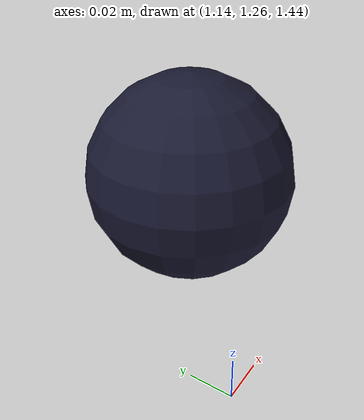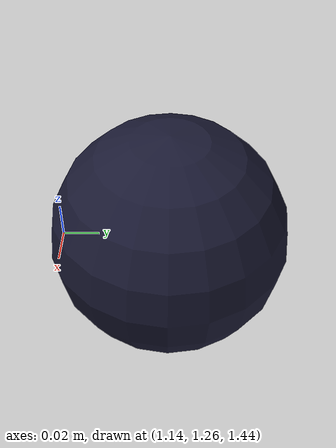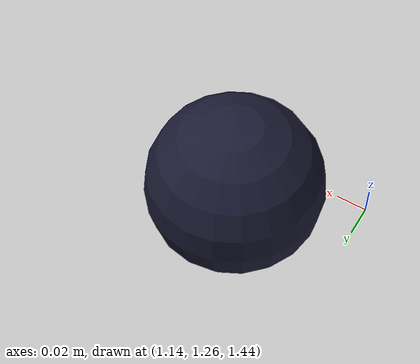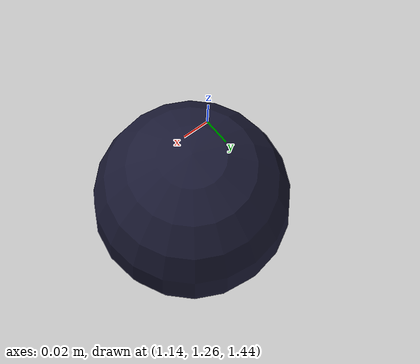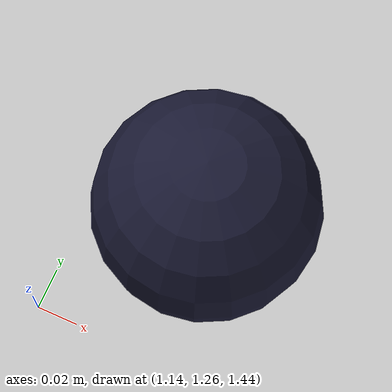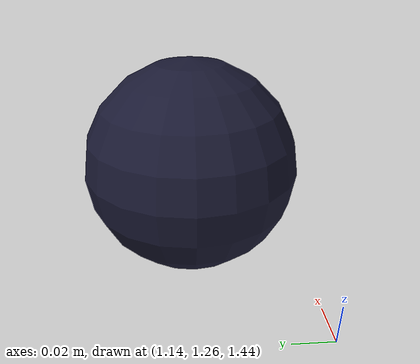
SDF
<?xml version="1.0" ?>
<sdf version="1.4">
  <world name="default">
    <include>
      <uri>model://ground_plane</uri>
    </include>
    <include>
      <uri>model://sun</uri>
    </include>

    <!-- Only one ROS interface plugin is required per world, as any other plugin can connect a Gazebo
         topic to a ROS topic (or vise versa). -->
    <plugin name="ros_interface_plugin" filename="librotors_gazebo_ros_interface_plugin.so"/>

    <spherical_coordinates>
      <surface_model>EARTH_WGS84</surface_model>
      <latitude_deg>47.3667</latitude_deg>
      <longitude_deg>8.5500</longitude_deg>
      <elevation>500.0</elevation>
      <heading_deg>0</heading_deg>
    </spherical_coordinates>
    <physics type='ode'>
      <ode>
        <solver>
          <type>quick</type>
          <iters>1000</iters>
          <sor>1.3</sor>
        </solver>
        <constraints>
          <cfm>0</cfm>
          <erp>0.2</erp>
          <contact_max_correcting_vel>100</contact_max_correcting_vel>
          <contact_surface_layer>0.001</contact_surface_layer>
        </constraints>
      </ode>
      <max_step_size>0.01</max_step_size>
      <real_time_factor>1</real_time_factor>
      <real_time_update_rate>100</real_time_update_rate>
      <gravity>0 0 -9.8</gravity>
    </physics>
    <model name="target">
      <pose>1.2 1.32 1.5 0 0 0</pose>
      <static>0</static>
      <link name="link">
        <gravity>0</gravity>
        <collision name="collision">
          <geometry>
          <sphere>
            <radius>0.051</radius>
          </sphere>
        </geometry>
          <surface>
            <contact>
              <collide_without_contact>1</collide_without_contact>
            </contact>
          </surface>
        </collision>
        <visual name="visual">
          <material>
            <ambient>0.1 0.1 0.1 1</ambient>
            <diffuse>0.1 0.1 0.2 1</diffuse>
            <specular>0 1 1 0</specular>
            <emissive>0 1 0 1</emissive>
          </material>
          <geometry>
          <sphere>
            <radius>0.051</radius>
          </sphere>
        </geometry>
        </visual>
      </link>
    </model>
  </world>
</sdf>
